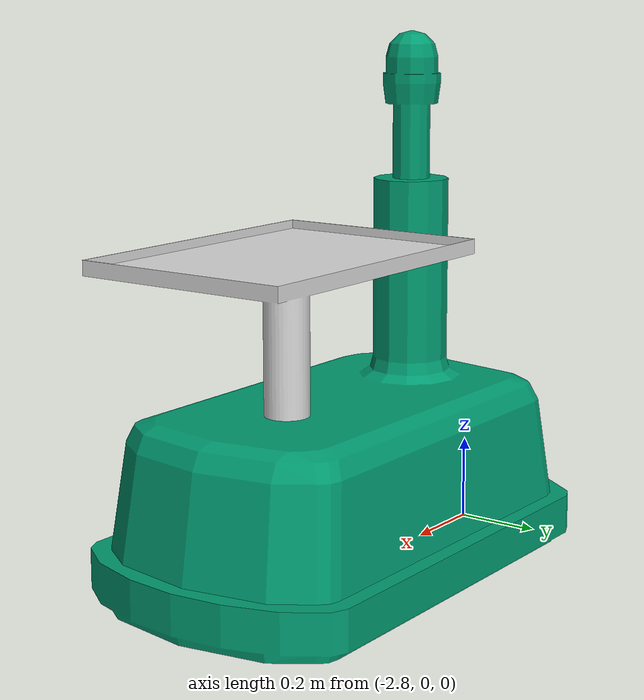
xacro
<?xml version="1.0"?>

<robot name="agv" xmlns:xacro="http://ros.org/wiki/xacro">
  <!-- Include macro -->
  <xacro:include filename="$(find ariac_description)/urdf/AGV/agv_macro.xacro"/>

  <xacro:arg name="agv_number" default="agv1"/>
  <xacro:property name="agv_number" default="$(arg agv_number)"/>

  <xacro:arg name="y_position" default="0"/>
  <xacro:property name="y_position" default="$(arg y_position)"/>

  <!-- Create a world link -->
  <link name="world"/>

  <!-- Run agv macro -->
  <xacro:agv
    agv_number="$(arg agv_number)"
    y_position="$(arg y_position)"
    >
  </xacro:agv>

  <gazebo
    reference="world">
  </gazebo>

  <xacro:arg name="controllers" default="$(find ariac_description)/config/agv_controllers.yaml" />

  <gazebo>
    <plugin filename="libgazebo_ros2_control.so" name="$(arg agv_number)_gazebo_ros2_control">
      <ros>
        <namespace>$(arg agv_number)</namespace>
      </ros>
      <parameters>$(arg controllers)</parameters>
      <robot_param_node>/$(arg agv_number)/robot_state_publisher</robot_param_node>
      <controller_manager_prefix>$(arg agv_number)</controller_manager_prefix>
    </plugin>
  </gazebo>

  <!-- Create ARIAC AGV plugin -->
  <gazebo>
    <plugin filename="libagv_plugin.so" name="$(arg agv_number)_plugin">
      <ros>
        <namespace>/$(arg agv_number)</namespace>
      </ros>
      <agv_number>$(arg agv_number)</agv_number>
    </plugin>
  </gazebo>

</robot>

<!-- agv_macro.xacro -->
<robot xmlns:xacro="http://wiki.ros.org/xacro">
  <xacro:macro name="agv" params="
    agv_number
    y_position">

    <material name="Grey">
      <color rgba="${220/255} ${220/255} ${220/255} 1.0"/>
    </material>

    <xacro:include filename="$(find ariac_description)/urdf/AGV/agv.ros2_control.xacro"/>

    <!-- Run ROS2 control macro -->
    <xacro:agv_ros2_control name="${agv_number}"/>

    <link name="${agv_number}_track">
      <inertial>
        <mass value="100"/>
        <inertia ixx="1.0" ixy="0.0" ixz="0.0" iyy="1.0" iyz="0.0" izz="1.0"/>
      </inertial>
    </link>

    <link name="${agv_number}_base">
      <visual>
        <geometry>
          <mesh filename="file://$(find ariac_description)/meshes/AGV/robot.dae" scale="1 -1 1"/>
        </geometry>
      </visual>
      <collision>
        <geometry>
          <mesh filename="file://$(find ariac_description)/meshes/AGV/robot.dae" scale="1 -1 1"/>
        </geometry>
      </collision>
      <inertial>
        <origin xyz="0 0 0" rpy="0 0 0"/>
        <mass value="50.0"/>
        <inertia
            ixx="4.525499333333333" ixy="0.0" ixz="0.0"
            iyy="1.4504741933333334" iyz="0.0"
            izz="5.6426401933333326"/>
      </inertial>
    </link>

    <link name="${agv_number}_tray">
      <visual>
        <geometry>
          <mesh filename="file://$(find ariac_description)/meshes/AGV/tray.stl" scale="1 1 1"/>
        </geometry>
        <material name="Grey"/>
      </visual>

      <collision name="${agv_number}_tray_collision">
        <geometry>
          <mesh filename="file://$(find ariac_description)/meshes/AGV/tray.stl" scale="1 1 1"/>
        </geometry>
      </collision>

      <collision name="${agv_number}_tray_collision1">
        <geometry>
          <mesh filename="file://$(find ariac_description)/meshes/AGV/contact_sensor.stl" scale="1 1 1"/>
        </geometry>
      </collision>

      <inertial>
        <origin xyz="0 0 0" rpy="0 0 0"/>
        <mass value="1"/>
        <inertia ixx="0.0408" ixy="0.0" ixz="0.0" iyy="0.02084" iyz="0.0" izz="0.0616"/>
      </inertial>
    </link>

    <gazebo reference="${agv_number}_tray">
      <sensor type="contact" name="bumper">
        <update_rate>10</update_rate>
        <contact>
          <collision>${agv_number}_tray_collision1_collision_1</collision>
        </contact>
      </sensor>
    </gazebo>

    <gazebo>
      <plugin filename="libAGVTrayPlugin.so" name="${agv_number}_tray_plugin">
        <ros>
          <namespace></namespace>
        </ros>
        <agv_tray_link>${agv_number}_tray</agv_tray_link>
        <agv_number>${agv_number}</agv_number>
      </plugin>
    </gazebo>

    <gazebo reference="${agv_number}_tray">
      <material>Gazebo/Gray</material>
    </gazebo>

    <joint name="${agv_number}_world_to_track" type="fixed">
      <parent link="world"/>
      <child link="${agv_number}_track"/>
      <origin xyz="-2.27 ${y_position} 0.01" rpy="0.0 0.0 ${pi/2}"/>
    </joint>

    <joint name="${agv_number}_joint" type="prismatic">
      <axis xyz="0 1 0"/>
      <origin xyz="0.0 0.0 0.0"/>
      <parent link="${agv_number}_track"/>
      <child link="${agv_number}_base"/>
      <limit effort="1000.0" lower="0" upper="18" velocity="8"/>
      <dynamics damping="20.0" friction="500.0" />
    </joint>

    <joint name="${agv_number}_tray_joint" type="revolute">
      <axis xyz="0 0 1"/>
      <parent link="${agv_number}_base"/>
      <child link="${agv_number}_tray"/>
      <limit lower="-.001" upper=".001" effort="0" velocity="0" />
      <origin xyz="0 -0.2 .75" rpy="0.0 0.0 0.0"/>
    </joint>

  </xacro:macro>
</robot>
